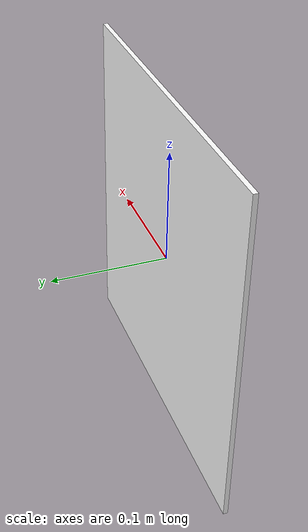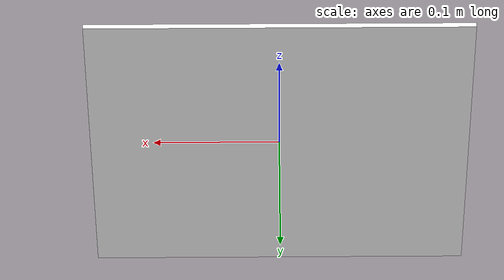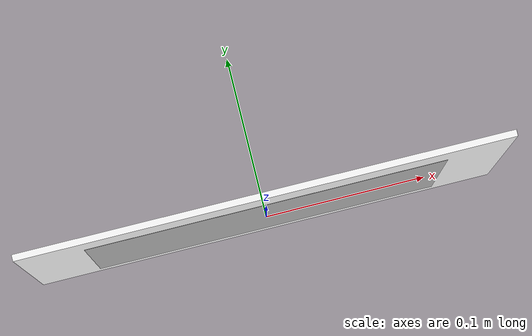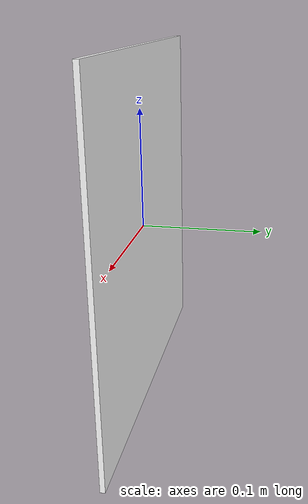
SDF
<?xml version="1.0"?>
<!-- SPDX-License-Identifier: Apache-2.0 -->
<sdf version="1.6"><model name="wrong_marker_station"><static>true</static><link name="board">
  <!-- Collision-free opaque board covers the original marker without altering navigation geometry. -->
  <visual name="backing"><pose>0 0.003 0 0 0 0</pose><geometry><box><size>0.30 0.004 0.30</size></box></geometry><material><ambient>1 1 1 1</ambient><diffuse>1 1 1 1</diffuse></material></visual>
  <visual name="marker_plane"><pose>0 0 0 1.5707963267948966 0 0</pose><geometry><plane><normal>0 0 1</normal><size>0.22 0.22</size></plane></geometry><material><script><uri>model://inspection_station/materials/scripts</uri><uri>model://inspection_station/materials/textures</uri><name>Factory/InspectionMarker</name></script></material></visual>
</link></model></sdf>
